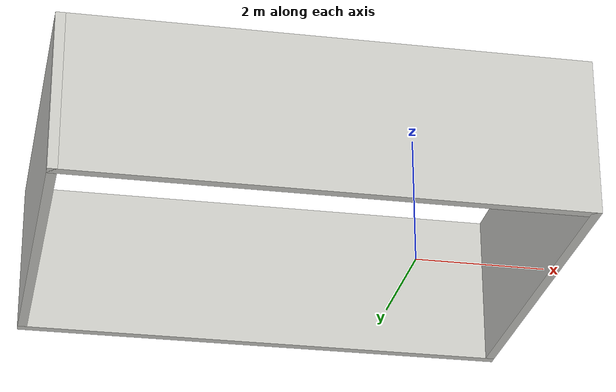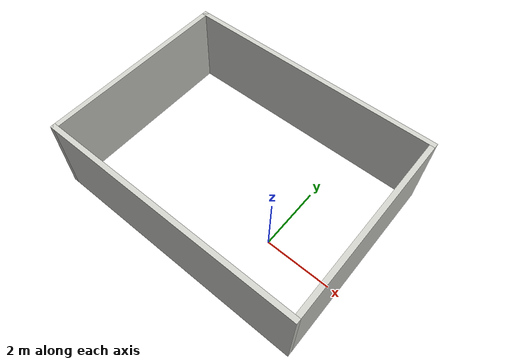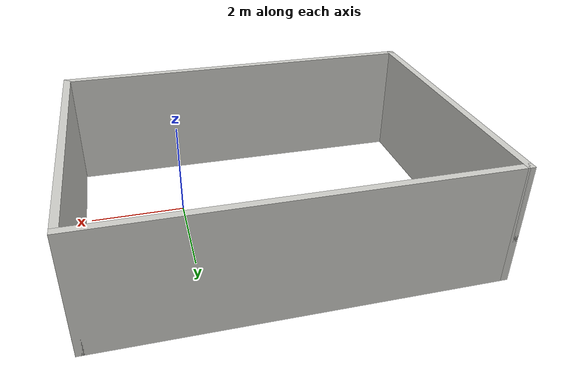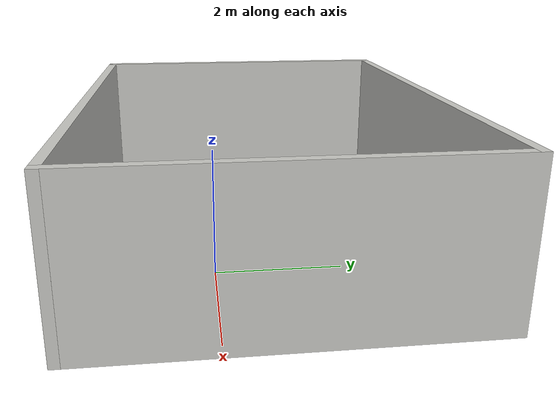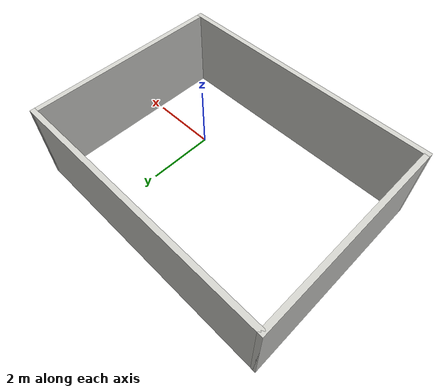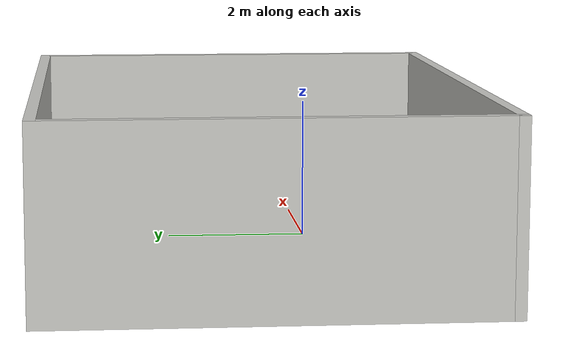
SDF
<?xml version='1.0'?>
<sdf version='1.6'>
  <model name='6x8'>
    <pose frame=''>-1.73279 0.912874 0 0 -0 0</pose>
    <link name='Wall_16'>
      <collision name='Wall_16_Collision'>
        <geometry>
          <box>
            <size>6 0.15 2.5</size>
          </box>
        </geometry>
        <pose frame=''>0 0 1.25 0 -0 0</pose>
      </collision>
      <visual name='Wall_16_Visual'>
        <pose frame=''>0 0 1.25 0 -0 0</pose>
        <geometry>
          <box>
            <size>6 0.15 2.5</size>
          </box>
        </geometry>
        <material>
          <script>
            <uri>file://media/materials/scripts/gazebo.material</uri>
            <name>Gazebo/CeilingTiled</name>
          </script>
          <ambient>1 1 1 1</ambient>
        </material>
      </visual>
      <pose frame=''>-3.925 0 0 0 -0 1.5708</pose>
    </link>
    <link name='Wall_17'>
      <collision name='Wall_17_Collision'>
        <geometry>
          <box>
            <size>8 0.15 2.5</size>
          </box>
        </geometry>
        <pose frame=''>0 0 1.25 0 -0 0</pose>
      </collision>
      <visual name='Wall_17_Visual'>
        <pose frame=''>0 0 1.25 0 -0 0</pose>
        <geometry>
          <box>
            <size>8 0.15 2.5</size>
          </box>
        </geometry>
        <material>
          <script>
            <uri>file://media/materials/scripts/gazebo.material</uri>
            <name>Gazebo/CeilingTiled</name>
          </script>
          <ambient>1 1 1 1</ambient>
        </material>
      </visual>
      <pose frame=''>0 2.925 0 0 -0 0</pose>
    </link>
    <link name='Wall_18'>
      <collision name='Wall_18_Collision'>
        <geometry>
          <box>
            <size>6 0.15 2.5</size>
          </box>
        </geometry>
        <pose frame=''>0 0 1.25 0 -0 0</pose>
      </collision>
      <visual name='Wall_18_Visual'>
        <pose frame=''>0 0 1.25 0 -0 0</pose>
        <geometry>
          <box>
            <size>6 0.15 2.5</size>
          </box>
        </geometry>
        <material>
          <script>
            <uri>file://media/materials/scripts/gazebo.material</uri>
            <name>Gazebo/CeilingTiled</name>
          </script>
          <ambient>1 1 1 1</ambient>
        </material>
      </visual>
      <pose frame=''>3.925 0 0 0 0 -1.5708</pose>
    </link>
    <link name='Wall_19'>
      <collision name='Wall_19_Collision'>
        <geometry>
          <box>
            <size>8 0.15 2.5</size>
          </box>
        </geometry>
        <pose frame=''>0 0 1.25 0 -0 0</pose>
      </collision>
      <visual name='Wall_19_Visual'>
        <pose frame=''>0 0 1.25 0 -0 0</pose>
        <geometry>
          <box>
            <size>8 0.15 2.5</size>
          </box>
        </geometry>
        <material>
          <script>
            <uri>file://media/materials/scripts/gazebo.material</uri>
            <name>Gazebo/CeilingTiled</name>
          </script>
          <ambient>1 1 1 1</ambient>
        </material>
      </visual>
      <pose frame=''>0 -2.925 0 0 -0 3.14159</pose>
    </link>
    <static>1</static>
  </model>
</sdf>
